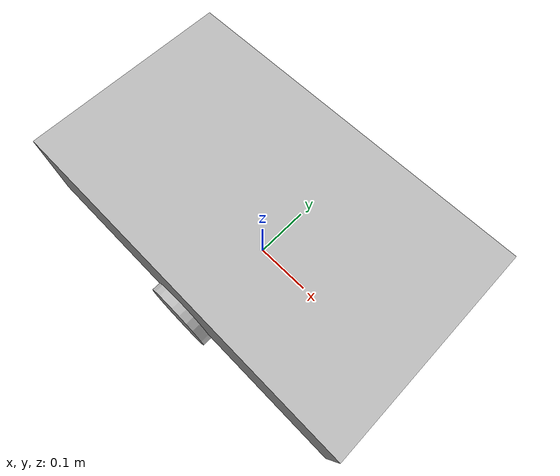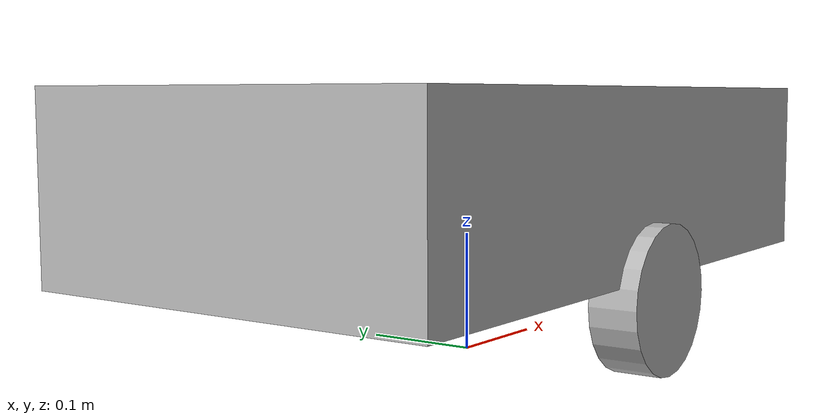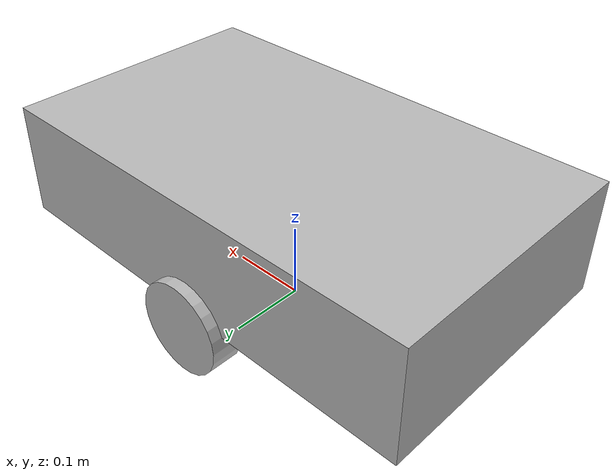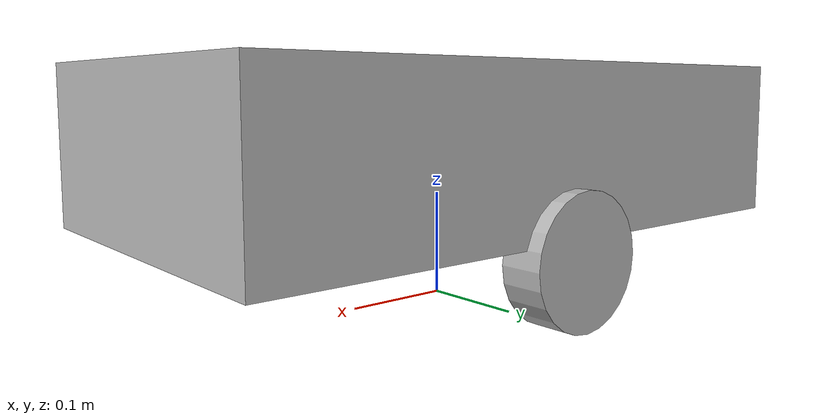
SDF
<?xml version="1.0" ?>
<sdf version="1.6">
  <model name="car">
    <static>false</static>

    <!-- ================= BASE ================= -->
    <link name="base_link">
      <pose>0 0 0.15 0 0 0</pose>
      <inertial>
        <mass>5.0</mass>
        <inertia>
          <ixx>0.2</ixx><iyy>0.2</iyy><izz>0.2</izz>
          <ixy>0</ixy><ixz>0</ixz><iyz>0</iyz>
        </inertia>
      </inertial>

      <collision name="collision">
        <geometry>
          <box><size>0.6 0.35 0.15</size></box>
        </geometry>
      </collision>

      <visual name="visual">
        <geometry>
          <box><size>0.6 0.35 0.15</size></box>
        </geometry>
      </visual>
    </link>

    <!-- ================= LEFT WHEEL ================= -->
    <link name="left_wheel">
      <pose>0 0.17 0.06 1.5708 0 0</pose> <!-- rotate cylinder -->
      <inertial>
        <mass>0.3</mass>
        <inertia>
          <ixx>0.001</ixx><iyy>0.001</iyy><izz>0.001</izz>
        </inertia>
      </inertial>

      <collision name="collision">
        <geometry>
          <cylinder>
            <radius>0.06</radius>
            <length>0.04</length>
          </cylinder>
        </geometry>
        <surface>
          <friction>
            <ode>
              <mu>2.0</mu>
              <mu2>2.0</mu2>
            </ode>
          </friction>
        </surface>
      </collision>

      <visual name="visual">
        <geometry>
          <cylinder>
            <radius>0.06</radius>
            <length>0.04</length>
          </cylinder>
        </geometry>
      </visual>
    </link>

    <!-- ================= RIGHT WHEEL ================= -->
    <link name="right_wheel">
      <pose>0 -0.17 0.06 1.5708 0 0</pose>
      <inertial>
        <mass>0.3</mass>
        <inertia>
          <ixx>0.001</ixx><iyy>0.001</iyy><izz>0.001</izz>
        </inertia>
      </inertial>

      <collision name="collision">
        <geometry>
          <cylinder>
            <radius>0.06</radius>
            <length>0.04</length>
          </cylinder>
        </geometry>
        <surface>
          <friction>
            <ode>
              <mu>2.0</mu>
              <mu2>2.0</mu2>
            </ode>
          </friction>
        </surface>
      </collision>

      <visual name="visual">
        <geometry>
          <cylinder>
            <radius>0.06</radius>
            <length>0.04</length>
          </cylinder>
        </geometry>
      </visual>
    </link>

    <!-- ================= JOINTS ================= -->
    <joint name="left_wheel_joint" type="continuous">
      <parent>base_link</parent>
      <child>left_wheel</child>
      <axis>
        <xyz>0 1 0</xyz>
      </axis>
    </joint>

    <joint name="right_wheel_joint" type="continuous">
      <parent>base_link</parent>
      <child>right_wheel</child>
      <axis>
        <xyz>0 1 0</xyz>
      </axis>
    </joint>

    <!-- ================= DIFF DRIVE ================= -->
    <plugin name="diff_drive" filename="libgazebo_ros_diff_drive.so">
      <leftJoint>left_wheel_joint</leftJoint>
      <rightJoint>right_wheel_joint</rightJoint>
      <wheelSeparation>0.34</wheelSeparation>
      <wheelDiameter>0.12</wheelDiameter>
      <robotBaseFrame>base_link</robotBaseFrame>
      <commandTopic>/cmd_vel</commandTopic>
      <odometryTopic>/odom</odometryTopic>
      <updateRate>50</updateRate>
      <publishTf>true</publishTf>
    </plugin>

  </model>
</sdf>
